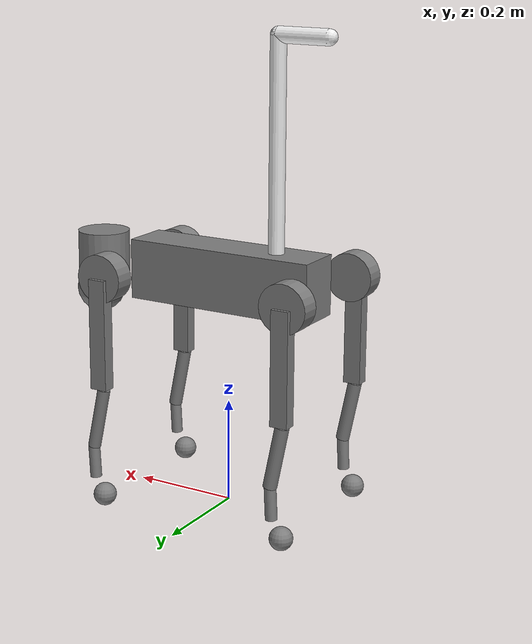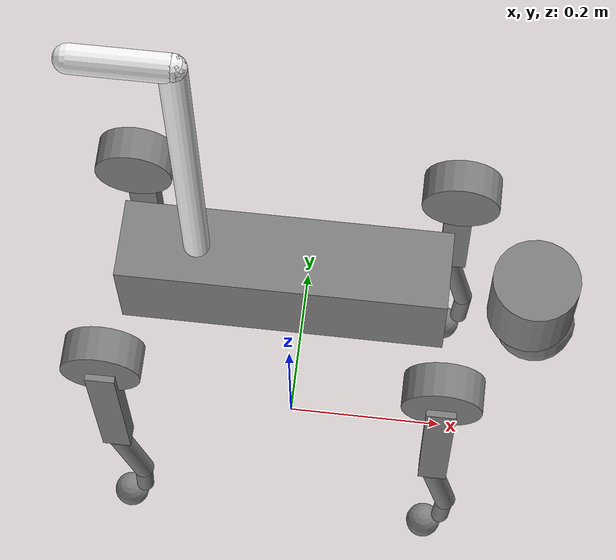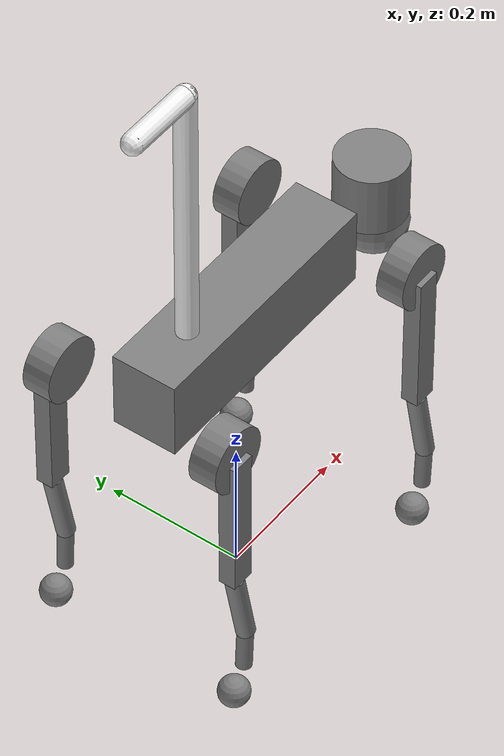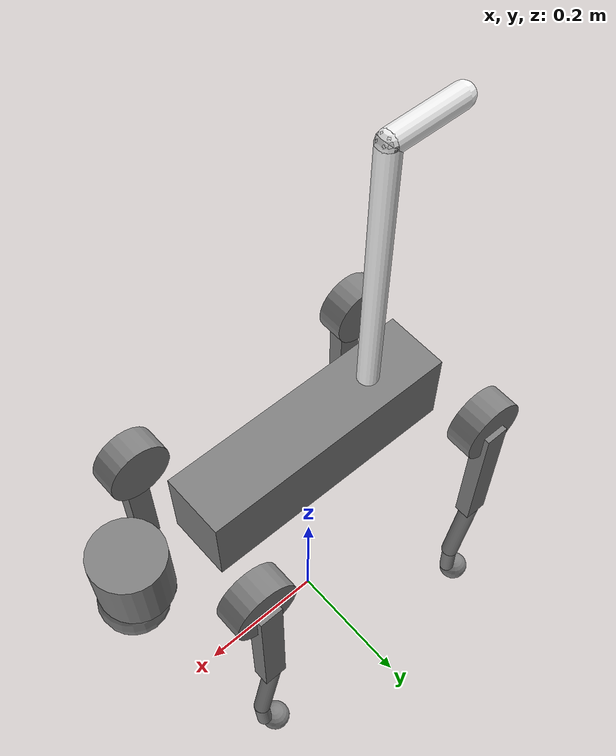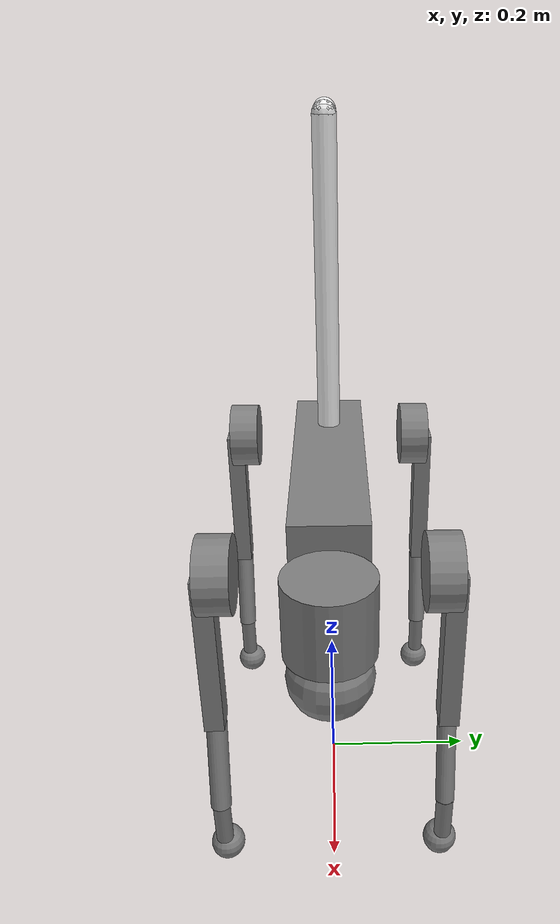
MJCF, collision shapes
<mujoco model="go2_description">
    <compiler angle="radian" autolimits="true"/>

    <option cone="elliptic" impratio="100"/>

    <default>
        <default class="go2">
            <geom friction="0.6" margin="0.001" condim="1"/>
            <joint axis="0 1 0" damping="0.6" armature="0.01" frictionloss="0.2"/>
            <motor ctrlrange="-23.7 23.7"/>
            <default class="abduction">
                <joint axis="1 0 0" range="-1.0472 1.0472"/>
            </default>
            <default class="hip">
                <default class="front_hip">
                    <joint range="-1.5708 3.4907"/>
                </default>
                <default class="back_hip">
                    <joint range="-0.5236 4.5379"/>
                </default>
            </default>
            <default class="knee">
                <joint range="-2.7227 -0.83776"/>
                <motor ctrlrange="-45.43 45.43"/>
            </default>
            <default class="visual">
                <geom type="mesh" contype="0" conaffinity="0" group="2"/>
            </default>
            <default class="collision">
                <geom group="3"/>
                <default class="foot">
                    <geom size="0.022" pos="-0.002 0 -0.213" priority="1" solimp="0.015 1 0.031" condim="6"
                          friction="0.8 0.02 0.01"/>
                </default>
            </default>
        </default>
    </default>

    <asset>
        <material name="metal" rgba=".9 .95 .95 1"/>
        <material name="black" rgba="0 0 0 1"/>
        <material name="white" rgba="1 1 1 1"/>
        <material name="gray" rgba="0.671705 0.692426 0.774270 1"/>

        <mesh file="assets/base_0.obj"/>
        <mesh file="assets/base_1.obj"/>
        <mesh file="assets/base_2.obj"/>
        <mesh file="assets/base_3.obj"/>
        <mesh file="assets/base_4.obj"/>
        <mesh file="assets/hip_0.obj"/>
        <mesh file="assets/hip_1.obj"/>
        <mesh file="assets/thigh_0.obj"/>
        <mesh file="assets/thigh_1.obj"/>
        <mesh file="assets/thigh_mirror_0.obj"/>
        <mesh file="assets/thigh_mirror_1.obj"/>
        <mesh file="assets/calf_0.obj"/>
        <mesh file="assets/calf_1.obj"/>
        <mesh file="assets/calf_mirror_0.obj"/>
        <mesh file="assets/calf_mirror_1.obj"/>
        <mesh file="assets/foot.obj"/>
    </asset>

    <worldbody>
        <body name="base" pos="0 0 0.445" childclass="go2">
            <inertial pos="0.021112 0 -0.005366" quat="-0.000543471 0.713435 -0.00173769 0.700719" mass="6.921"
                      diaginertia="0.107027 0.0980771 0.0244531"/>
            <freejoint/>
            <geom mesh="base_0" material="black" class="visual"/>
            <geom mesh="base_1" material="black" class="visual"/>
            <geom mesh="base_2" material="black" class="visual"/>
            <geom mesh="base_3" material="white" class="visual"/>
            <geom mesh="base_4" material="gray" class="visual"/>
            <geom size="0.1881 0.04675 0.057" type="box" class="collision"/>
            <geom size="0.05 0.045" pos="0.285 0 0.01" type="cylinder" class="collision"/>
            <geom size="0.047" pos="0.293 0 -0.06" class="collision"/>
            <site name="imu" pos="-0.02557 0 0.04232"/>
            <body name="FL_hip" pos="0.1934 0.0465 0">
                <inertial pos="-0.0054 0.00194 -0.000105" quat="0.497014 0.499245 0.505462 0.498237" mass="0.678"
                          diaginertia="0.00088403 0.000596003 0.000479967"/>
                <joint name="FL_hip_joint" class="abduction"/>
                <geom mesh="hip_0" material="metal" class="visual"/>
                <geom mesh="hip_1" material="gray" class="visual"/>
                <geom size="0.046 0.02" pos="0 0.08 0" quat="1 1 0 0" type="cylinder" class="collision"/>
                <body name="FL_thigh" pos="0 0.0955 0">
                    <inertial pos="-0.00374 -0.0223 -0.0327" quat="0.829533 0.0847635 -0.0200632 0.551623" mass="1.152"
                              diaginertia="0.00594973 0.00584149 0.000878787"/>
                    <joint name="FL_thigh_joint" class="front_hip"/>
                    <geom mesh="thigh_0" material="metal" class="visual"/>
                    <geom mesh="thigh_1" material="gray" class="visual"/>
                    <geom size="0.1065 0.01225 0.017" pos="0 0 -0.1065" quat="0.707107 0 0.707107 0" type="box"
                          class="collision"/>
                    <body name="FL_calf" pos="0 0 -0.213">
                        <inertial pos="0.00629595 -0.000622121 -0.141417"
                                  quat="0.710672 0.00154099 -0.00450087 0.703508"
                                  mass="0.241352" diaginertia="0.0014901 0.00146356 5.31397e-05"/>
                        <joint name="FL_calf_joint" class="knee"/>
                        <geom mesh="calf_0" material="gray" class="visual"/>
                        <geom mesh="calf_1" material="black" class="visual"/>
                        <geom size="0.012 0.06" pos="0.008 0 -0.06" quat="0.994493 0 -0.104807 0" type="cylinder"
                              class="collision"/>
                        <geom size="0.011 0.0325" pos="0.02 0 -0.148" quat="0.999688 0 0.0249974 0" type="cylinder"
                              class="collision"/>
                        <geom pos="0 0 -0.213" mesh="foot" class="visual" material="black"/>
                        <geom name="FL" class="foot"/>
                    </body>
                </body>
            </body>
            <body name="FR_hip" pos="0.1934 -0.0465 0">
                <inertial pos="-0.0054 -0.00194 -0.000105" quat="0.498237 0.505462 0.499245 0.497014" mass="0.678"
                          diaginertia="0.00088403 0.000596003 0.000479967"/>
                <joint name="FR_hip_joint" class="abduction"/>
                <geom mesh="hip_0" material="metal" class="visual" quat="4.63268e-05 1 0 0"/>
                <geom mesh="hip_1" material="gray" class="visual" quat="4.63268e-05 1 0 0"/>
                <geom size="0.046 0.02" pos="0 -0.08 0" quat="0.707107 0.707107 0 0" type="cylinder" class="collision"/>
                <body name="FR_thigh" pos="0 -0.0955 0">
                    <inertial pos="-0.00374 0.0223 -0.0327" quat="0.551623 -0.0200632 0.0847635 0.829533" mass="1.152"
                              diaginertia="0.00594973 0.00584149 0.000878787"/>
                    <joint name="FR_thigh_joint" class="front_hip"/>
                    <geom mesh="thigh_mirror_0" material="metal" class="visual"/>
                    <geom mesh="thigh_mirror_1" material="gray" class="visual"/>
                    <geom size="0.1065 0.01225 0.017" pos="0 0 -0.1065" quat="0.707107 0 0.707107 0" type="box"
                          class="collision"/>
                    <body name="FR_calf" pos="0 0 -0.213">
                        <inertial pos="0.00629595 0.000622121 -0.141417" quat="0.703508 -0.00450087 0.00154099 0.710672"
                                  mass="0.241352" diaginertia="0.0014901 0.00146356 5.31397e-05"/>
                        <joint name="FR_calf_joint" class="knee"/>
                        <geom mesh="calf_mirror_0" material="gray" class="visual"/>
                        <geom mesh="calf_mirror_1" material="black" class="visual"/>
                        <geom size="0.013 0.06" pos="0.01 0 -0.06" quat="0.995004 0 -0.0998334 0" type="cylinder"
                              class="collision"/>
                        <geom size="0.011 0.0325" pos="0.02 0 -0.148" quat="0.999688 0 0.0249974 0" type="cylinder"
                              class="collision"/>
                        <geom pos="0 0 -0.213" mesh="foot" class="visual" material="black"/>
                        <geom name="FR" class="foot"/>
                    </body>
                </body>
            </body>
            <body name="RL_hip" pos="-0.1934 0.0465 0">
                <inertial pos="0.0054 0.00194 -0.000105" quat="0.505462 0.498237 0.497014 0.499245" mass="0.678"
                          diaginertia="0.00088403 0.000596003 0.000479967"/>
                <joint name="RL_hip_joint" class="abduction"/>
                <geom mesh="hip_0" material="metal" class="visual" quat="4.63268e-05 0 1 0"/>
                <geom mesh="hip_1" material="gray" class="visual" quat="4.63268e-05 0 1 0"/>
                <geom size="0.046 0.02" pos="0 0.08 0" quat="0.707107 0.707107 0 0" type="cylinder" class="collision"/>
                <body name="RL_thigh" pos="0 0.0955 0">
                    <inertial pos="-0.00374 -0.0223 -0.0327" quat="0.829533 0.0847635 -0.0200632 0.551623" mass="1.152"
                              diaginertia="0.00594973 0.00584149 0.000878787"/>
                    <joint name="RL_thigh_joint" class="back_hip"/>
                    <geom mesh="thigh_0" material="metal" class="visual"/>
                    <geom mesh="thigh_1" material="gray" class="visual"/>
                    <geom size="0.1065 0.01225 0.017" pos="0 0 -0.1065" quat="0.707107 0 0.707107 0" type="box"
                          class="collision"/>
                    <body name="RL_calf" pos="0 0 -0.213">
                        <inertial pos="0.00629595 -0.000622121 -0.141417"
                                  quat="0.710672 0.00154099 -0.00450087 0.703508"
                                  mass="0.241352" diaginertia="0.0014901 0.00146356 5.31397e-05"/>
                        <joint name="RL_calf_joint" class="knee"/>
                        <geom mesh="calf_0" material="gray" class="visual"/>
                        <geom mesh="calf_1" material="black" class="visual"/>
                        <geom size="0.013 0.06" pos="0.01 0 -0.06" quat="0.995004 0 -0.0998334 0" type="cylinder"
                              class="collision"/>
                        <geom size="0.011 0.0325" pos="0.02 0 -0.148" quat="0.999688 0 0.0249974 0" type="cylinder"
                              class="collision"/>
                        <geom pos="0 0 -0.213" mesh="foot" class="visual" material="black"/>
                        <geom name="RL" class="foot"/>
                    </body>
                </body>
            </body>
            <body name="RR_hip" pos="-0.1934 -0.0465 0">
                <inertial pos="0.0054 -0.00194 -0.000105" quat="0.499245 0.497014 0.498237 0.505462" mass="0.678"
                          diaginertia="0.00088403 0.000596003 0.000479967"/>
                <joint name="RR_hip_joint" class="abduction"/>
                <geom mesh="hip_0" material="metal" class="visual" quat="2.14617e-09 4.63268e-05 4.63268e-05 -1"/>
                <geom mesh="hip_1" material="gray" class="visual" quat="2.14617e-09 4.63268e-05 4.63268e-05 -1"/>
                <geom size="0.046 0.02" pos="0 -0.08 0" quat="0.707107 0.707107 0 0" type="cylinder" class="collision"/>
                <body name="RR_thigh" pos="0 -0.0955 0">
                    <inertial pos="-0.00374 0.0223 -0.0327" quat="0.551623 -0.0200632 0.0847635 0.829533" mass="1.152"
                              diaginertia="0.00594973 0.00584149 0.000878787"/>
                    <joint name="RR_thigh_joint" class="back_hip"/>
                    <geom mesh="thigh_mirror_0" material="metal" class="visual"/>
                    <geom mesh="thigh_mirror_1" material="gray" class="visual"/>
                    <geom size="0.1065 0.01225 0.017" pos="0 0 -0.1065" quat="0.707107 0 0.707107 0" type="box"
                          class="collision"/>
                    <body name="RR_calf" pos="0 0 -0.213">
                        <inertial pos="0.00629595 0.000622121 -0.141417" quat="0.703508 -0.00450087 0.00154099 0.710672"
                                  mass="0.241352" diaginertia="0.0014901 0.00146356 5.31397e-05"/>
                        <joint name="RR_calf_joint" class="knee"/>
                        <geom mesh="calf_mirror_0" material="gray" class="visual"/>
                        <geom mesh="calf_mirror_1" material="black" class="visual"/>
                        <geom size="0.013 0.06" pos="0.01 0 -0.06" quat="0.995004 0 -0.0998334 0" type="cylinder"
                              class="collision"/>
                        <geom size="0.011 0.0325" pos="0.02 0 -0.148" quat="0.999688 0 0.0249974 0" type="cylinder"
                              class="collision"/>
                        <geom pos="0 0 -0.213" mesh="foot" class="visual" material="black"/>
                        <geom name="RR" class="foot"/>
                    </body>
                </body>
            </body>
            <!-- Cane attached to back of robot with force-torque sensor -->
            <body name="cane_base" pos="-0.1 0 0.25">
                <inertial pos="0 0 0.1" mass="0.8" diaginertia="0.002 0.002 0.00002"/>
                <!-- No joint element = rigidly attached to parent body (robot base) -->
                <site name="cane_sensor_site" pos="0 0 0" size="0.01"/>
                <geom name="cane_shaft" size="0.015 0.2" pos="0 0 0" type="capsule" rgba="0.95 0.95 0.95 1"/>

                <body name="cane_handle" pos="0 0 0.2">
                    <geom name="cane_handle" size="0.015 0.05" pos="-0.05 0 0" type="capsule" quat="0.707107 0 0.707107 0" rgba="0.95 0.95 0.95 1"/>
                </body>

            </body>
        </body>
    </worldbody>

    <actuator>
        <motor class="abduction" name="FL_hip" joint="FL_hip_joint"/>
        <motor class="hip" name="FL_thigh" joint="FL_thigh_joint"/>
        <motor class="knee" name="FL_calf" joint="FL_calf_joint"/>
        <motor class="abduction" name="FR_hip" joint="FR_hip_joint"/>
        <motor class="hip" name="FR_thigh" joint="FR_thigh_joint"/>
        <motor class="knee" name="FR_calf" joint="FR_calf_joint"/>
        <motor class="abduction" name="RL_hip" joint="RL_hip_joint"/>
        <motor class="hip" name="RL_thigh" joint="RL_thigh_joint"/>
        <motor class="knee" name="RL_calf" joint="RL_calf_joint"/>
        <motor class="abduction" name="RR_hip" joint="RR_hip_joint"/>
        <motor class="hip" name="RR_thigh" joint="RR_thigh_joint"/>
        <motor class="knee" name="RR_calf" joint="RR_calf_joint"/>
    </actuator>

    <sensor>
        <accelerometer name="imu_acc" site="imu"/>
        <gyro name="imu_gyro" site="imu"/>
        <framepos name="imu_pos" objtype="site" objname="imu"/>
        <framequat name="imu_quat" objtype="site" objname="imu"/>
        <!-- Force-torque sensor at cane base connection -->
        <framepos name="cane_pos" objtype="body" objname="cane_base"/>
        <framequat name="cane_quat" objtype="body" objname="cane_base"/>
        <force name="cane_force" site="cane_sensor_site"/>
        <torque name="cane_torque" site="cane_sensor_site"/>
    </sensor>

    <keyframe>
        <key name="home" qpos="0 0 0.27 1 0 0 0 0 0.9 -1.8 0 0.9 -1.8 0 0.9 -1.8 0 0.9 -1.8"/>
        <key name="down" qpos="0 0 0.05 1 0 0 0 0.0 1.21 -2.794 0.0 1.21 -2.794 0.0 1.21 -2.794 0.0 1.21 -2.794"/>
    </keyframe>
</mujoco>
